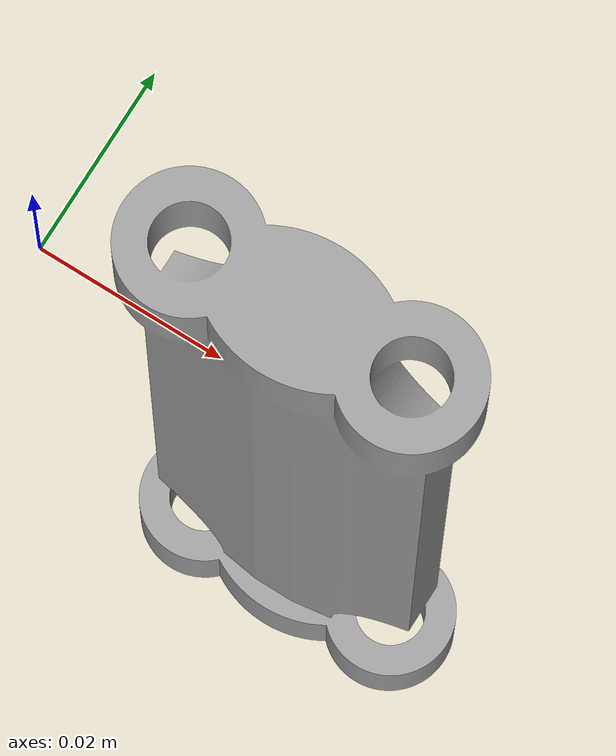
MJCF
<mujoco model="f3_block_link">
  <default>
    <default class="visual">
      <geom group="2" type="mesh" contype="0" conaffinity="0"/>
    </default>
    <default class="collision">
      <geom group="3" type="mesh"/>
    </default>
  </default>
  <asset>
    <material name="Steel_-_Satin" specular="0.5" shininess="0.5" rgba="0.627451 0.627451 0.627451 1.0"/>
    <mesh file="f3_block_link.obj"/>
    <mesh file="f3_block_link_collision_0.obj"/>
    <mesh file="f3_block_link_collision_1.obj"/>
    <mesh file="f3_block_link_collision_2.obj"/>
    <mesh file="f3_block_link_collision_3.obj"/>
    <mesh file="f3_block_link_collision_4.obj"/>
    <mesh file="f3_block_link_collision_5.obj"/>
    <mesh file="f3_block_link_collision_6.obj"/>
    <mesh file="f3_block_link_collision_7.obj"/>
    <mesh file="f3_block_link_collision_8.obj"/>
    <mesh file="f3_block_link_collision_9.obj"/>
  </asset>
  <worldbody>
    <body name="f3_block_link">
      <geom material="Steel_-_Satin" mesh="f3_block_link" class="visual"/>
      <geom mesh="f3_block_link_collision_0" rgba="0.49929027030117257 0.37668219669923175 0.3059840292811715 1" class="collision"/>
      <geom mesh="f3_block_link_collision_1" rgba="0.4577517595244134 0.9283619189977684 0.5820520379446212 1" class="collision"/>
      <geom mesh="f3_block_link_collision_2" rgba="0.895278113716544 0.16814769242501582 0.5402354596415866 1" class="collision"/>
      <geom mesh="f3_block_link_collision_3" rgba="0.6789533923717219 0.9736587899639935 0.1074765517436278 1" class="collision"/>
      <geom mesh="f3_block_link_collision_4" rgba="0.9084536057858092 0.852837461546981 0.8171775345432688 1" class="collision"/>
      <geom mesh="f3_block_link_collision_5" rgba="0.8584623738064553 0.10789411467915633 0.759743865377774 1" class="collision"/>
      <geom mesh="f3_block_link_collision_6" rgba="0.39861883045863733 0.2057087341344287 0.10617229818249607 1" class="collision"/>
      <geom mesh="f3_block_link_collision_7" rgba="0.9446089700500092 0.01420570725664716 0.7600637395468792 1" class="collision"/>
      <geom mesh="f3_block_link_collision_8" rgba="0.7027873540210792 0.18966134087413378 0.03942049253017843 1" class="collision"/>
      <geom mesh="f3_block_link_collision_9" rgba="0.1306860932385424 0.8902684762345735 0.7907595693903346 1" class="collision"/>
    </body>
  </worldbody>
</mujoco>
